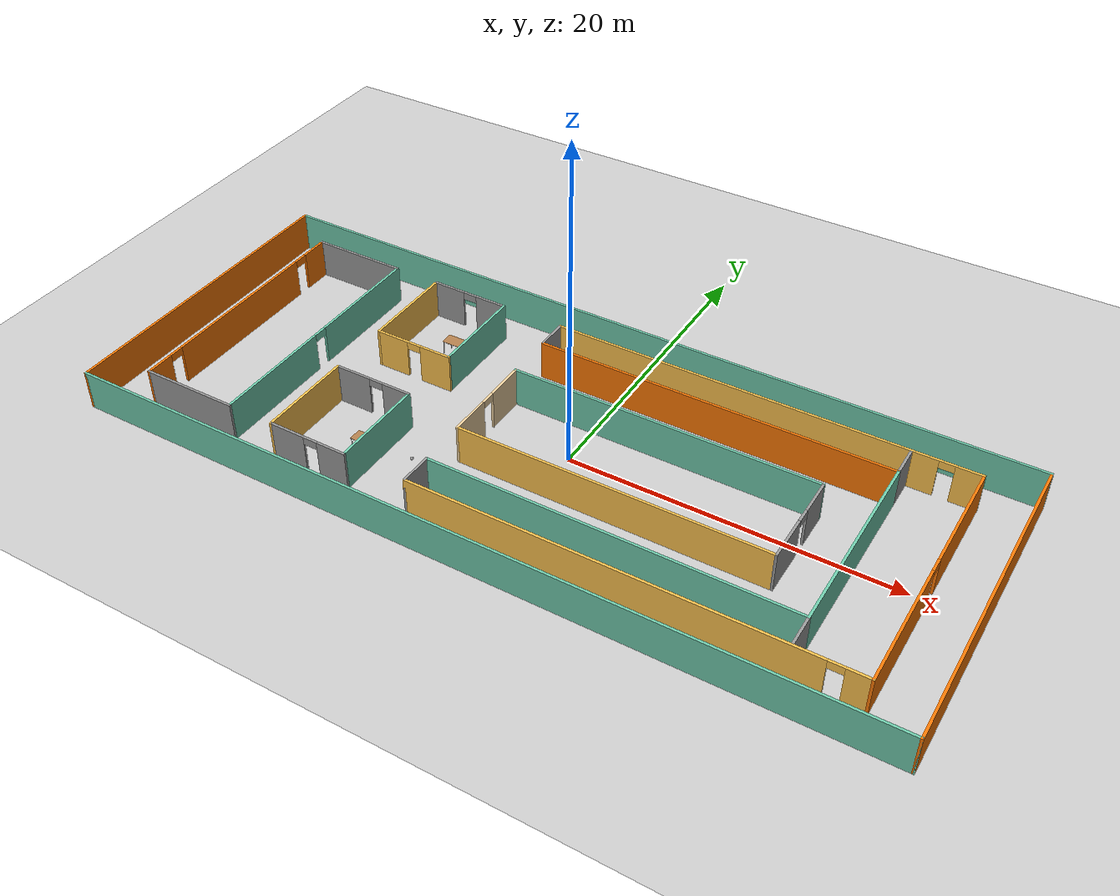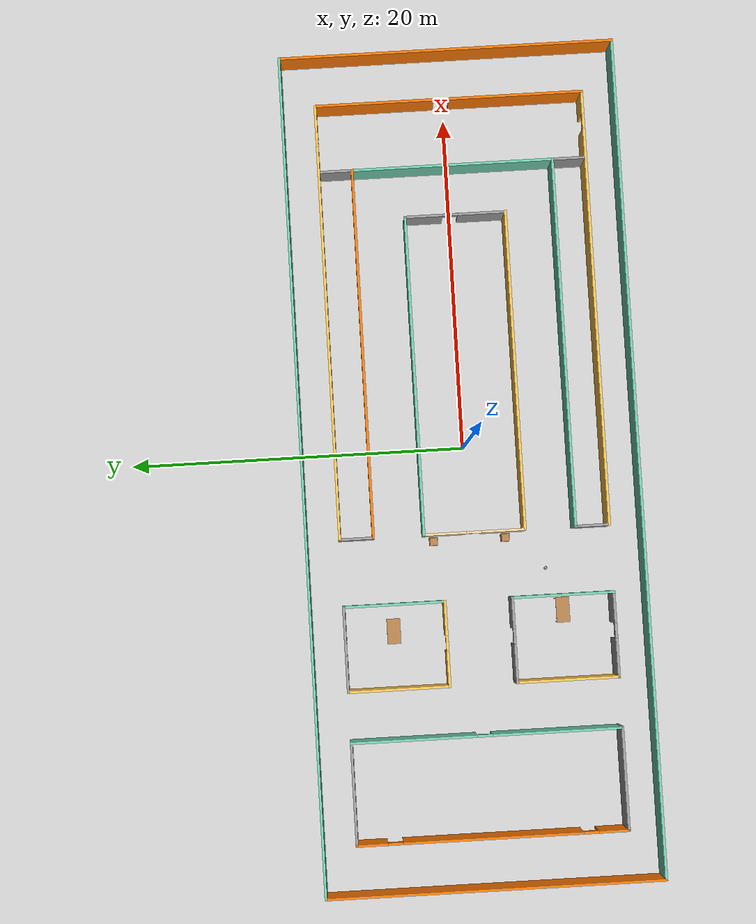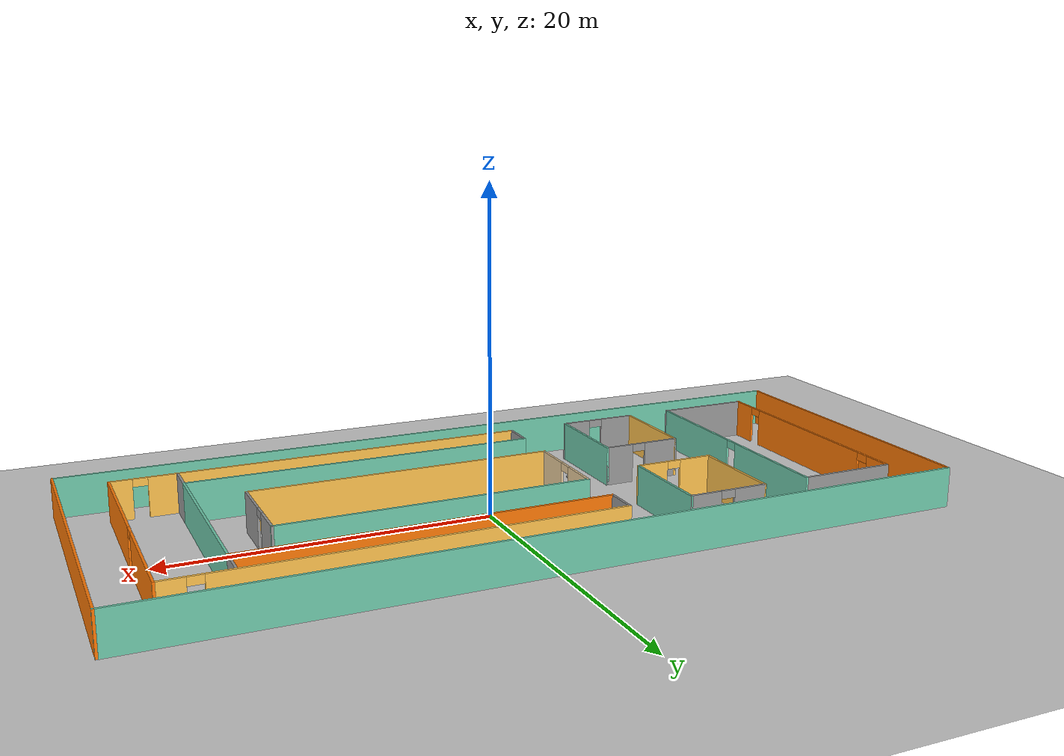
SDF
<sdf version="1.6">
 <world name="default">
  <light name="sun" type="directional">
   <pose>0 0 10 0 -0 0</pose>
   <diffuse>0.8 0.8 0.8 1</diffuse>
   <specular>0.2 0.2 0.2 1</specular>
   <attenuation>
    <range>1000</range>
    <constant>0.9</constant>
    <linear>0.01</linear>
    <quadratic>0.001</quadratic>
   </attenuation>
   <direction>-0.5 0.1 -0.9</direction>
  </light>
  <model name="ground_plane">
   <static>1</static>
   <link name="link">
    <collision name="collision">
     <geometry><plane><normal>0 0 1</normal><size>100 100</size></plane></geometry>
     <surface>
      <contact><collide_bitmask>65535</collide_bitmask></contact>
      <friction><ode><mu>100</mu><mu2>50</mu2></ode></friction>
     </surface>
    </collision>
    <visual name="visual">
     <cast_shadows>0</cast_shadows>
     <geometry><plane><normal>0 0 1</normal><size>100 100</size></plane></geometry>
     <material>
      <script><uri>file://media/materials/scripts/gazebo.material</uri><name>Gazebo/Grey</name></script>
     </material>
    </visual>
   </link>
  </model>
  <gravity>0 0 -9.8</gravity>
  <magnetic_field>6e-06 2.3e-05 -4.2e-05</magnetic_field>
  <atmosphere type="adiabatic"/>
  <physics name="default_physics" default="0" type="ode">
   <max_step_size>0.001</max_step_size>
   <real_time_factor>1</real_time_factor>
   <real_time_update_rate>1000</real_time_update_rate>
  </physics>
  <scene><ambient>0.4 0.4 0.4 1</ambient><background>0.7 0.7 0.7 1</background><shadows>1</shadows></scene>
  <spherical_coordinates>
   <surface_model>EARTH_WGS84</surface_model>
   <latitude_deg>0</latitude_deg>
   <longitude_deg>0</longitude_deg>
   <elevation>0</elevation>
   <heading_deg>0</heading_deg>
  </spherical_coordinates>
  <model name="buildingbig">
   <pose>-1.15163 -0.267473 0 0 -0 0</pose>
   <link name="Wall_0">
    <collision name="Wall_0_Collision">
     <geometry><box><size>20.15 0.15 2.5</size></box></geometry>
     <pose>0 0 1.25 0 -0 0</pose>
    </collision>
    <visual name="Wall_0_Visual">
     <pose>0 0 1.25 0 -0 0</pose>
     <geometry><box><size>20.15 0.15 2.5</size></box></geometry>
     <material>
      <script><uri>file://media/materials/scripts/gazebo.material</uri><name>Gazebo/Grey</name></script>
      <ambient>0.996078 0.47451 0.0196078 1</ambient>
     </material>
     <meta><layer>0</layer></meta>
    </visual>
    <pose>-25 0 0 0 0 -1.5708</pose>
   </link>
   <link name="Wall_13">
    <collision name="Wall_13_Collision">
     <geometry><box><size>50.15 0.15 2.5</size></box></geometry>
     <pose>0 0 1.25 0 -0 0</pose>
    </collision>
    <visual name="Wall_13_Visual">
     <pose>0 0 1.25 0 -0 0</pose>
     <geometry><box><size>50.15 0.15 2.5</size></box></geometry>
     <material>
      <script><uri>file://media/materials/scripts/gazebo.material</uri><name>Gazebo/Grey</name></script>
      <ambient>0.435294 0.796078 0.67451 1</ambient>
     </material>
     <meta><layer>0</layer></meta>
    </visual>
    <pose>0 -10 0 0 -0 0</pose>
   </link>
   <link name="Wall_17">
    <pose>-22 0 0 0 0 -1.5708</pose>
    <visual name="Wall_17_Visual_0">
     <pose>-7.12766 0 1.25 0 -0 0</pose>
     <geometry><box><size>1.89468 0.15 2.5</size></box></geometry>
     <material>
      <script><uri>file://media/materials/scripts/gazebo.material</uri><name>Gazebo/Grey</name></script>
      <ambient>0.996078 0.47451 0.0196078 1</ambient>
     </material>
     <meta><layer>0</layer></meta>
    </visual>
    <collision name="Wall_17_Collision_0">
     <geometry><box><size>1.89468 0.15 2.5</size></box></geometry>
     <pose>-7.12766 0 1.25 0 -0 0</pose>
    </collision>
    <visual name="Wall_17_Visual_1">
     <pose>0.030492 0 1.25 0 -0 0</pose>
     <geometry><box><size>10.6216 0.15 2.5</size></box></geometry>
     <material>
      <script><uri>file://media/materials/scripts/gazebo.material</uri><name>Gazebo/Grey</name></script>
      <ambient>0.996078 0.47451 0.0196078 1</ambient>
     </material>
     <meta><layer>0</layer></meta>
    </visual>
    <collision name="Wall_17_Collision_1">
     <geometry><box><size>10.6216 0.15 2.5</size></box></geometry>
     <pose>0.030492 0 1.25 0 -0 0</pose>
    </collision>
    <visual name="Wall_17_Visual_2">
     <pose>7.15815 0 1.25 0 -0 0</pose>
     <geometry><box><size>1.8337 0.15 2.5</size></box></geometry>
     <material>
      <script><uri>file://media/materials/scripts/gazebo.material</uri><name>Gazebo/Grey</name></script>
      <ambient>0.996078 0.47451 0.0196078 1</ambient>
     </material>
     <meta><layer>0</layer></meta>
    </visual>
    <collision name="Wall_17_Collision_2">
     <geometry><box><size>1.8337 0.15 2.5</size></box></geometry>
     <pose>7.15815 0 1.25 0 -0 0</pose>
    </collision>
    <visual name="Wall_17_Visual_3">
     <pose>-5.73032 0 2.25 0 -0 0</pose>
     <geometry><box><size>0.9 0.15 0.5</size></box></geometry>
     <material>
      <script><uri>file://media/materials/scripts/gazebo.material</uri><name>Gazebo/Grey</name></script>
      <ambient>0.996078 0.47451 0.0196078 1</ambient>
     </material>
     <meta><layer>0</layer></meta>
    </visual>
    <collision name="Wall_17_Collision_3">
     <geometry><box><size>0.9 0.15 0.5</size></box></geometry>
     <pose>-5.73032 0 2.25 0 -0 0</pose>
    </collision>
    <visual name="Wall_17_Visual_4">
     <pose>5.7913 0 2.25 0 -0 0</pose>
     <geometry><box><size>0.9 0.15 0.5</size></box></geometry>
     <material>
      <script><uri>file://media/materials/scripts/gazebo.material</uri><name>Gazebo/Grey</name></script>
      <ambient>0.996078 0.47451 0.0196078 1</ambient>
     </material>
     <meta><layer>0</layer></meta>
    </visual>
    <collision name="Wall_17_Collision_4">
     <geometry><box><size>0.9 0.15 0.5</size></box></geometry>
     <pose>5.7913 0 2.25 0 -0 0</pose>
    </collision>
   </link>
   <link name="Wall_19">
    <collision name="Wall_19_Collision">
     <geometry><box><size>6.15 0.15 2.5</size></box></geometry>
     <pose>0 0 1.25 0 -0 0</pose>
    </collision>
    <visual name="Wall_19_Visual">
     <pose>0 0 1.25 0 -0 0</pose>
     <geometry><box><size>6.15 0.15 2.5</size></box></geometry>
     <material>
      <script><uri>file://media/materials/scripts/gazebo.material</uri><name>Gazebo/Grey</name></script>
      <ambient>1 1 1 1</ambient>
     </material>
     <meta><layer>0</layer></meta>
    </visual>
    <pose>-19 8 0 0 -0 0</pose>
   </link>
   <link name="Wall_2">
    <collision name="Wall_2_Collision">
     <geometry><box><size>20.15 0.15 2.5</size></box></geometry>
     <pose>0 0 1.25 0 -0 0</pose>
    </collision>
    <visual name="Wall_2_Visual">
     <pose>0 0 1.25 0 -0 0</pose>
     <geometry><box><size>20.15 0.15 2.5</size></box></geometry>
     <material>
      <script><uri>file://media/materials/scripts/gazebo.material</uri><name>Gazebo/Grey</name></script>
      <ambient>0.996078 0.47451 0.0196078 1</ambient>
     </material>
     <meta><layer>0</layer></meta>
    </visual>
    <pose>25 0 0 0 -0 1.5708</pose>
   </link>
   <link name="Wall_20">
    <pose>-16 0 0 0 0 -1.5708</pose>
    <visual name="Wall_20_Visual_0">
     <pose>-4.31867 0 1.25 0 -0 0</pose>
     <geometry><box><size>7.51266 0.15 2.5</size></box></geometry>
     <material>
      <script><uri>file://media/materials/scripts/gazebo.material</uri><name>Gazebo/Grey</name></script>
      <ambient>0.435294 0.796078 0.67451 1</ambient>
     </material>
     <meta><layer>0</layer></meta>
    </visual>
    <collision name="Wall_20_Collision_0">
     <geometry><box><size>7.51266 0.15 2.5</size></box></geometry>
     <pose>-4.31867 0 1.25 0 -0 0</pose>
    </collision>
    <visual name="Wall_20_Visual_1">
     <pose>4.20633 0 1.25 0 -0 0</pose>
     <geometry><box><size>7.73734 0.15 2.5</size></box></geometry>
     <material>
      <script><uri>file://media/materials/scripts/gazebo.material</uri><name>Gazebo/Grey</name></script>
      <ambient>0.435294 0.796078 0.67451 1</ambient>
     </material>
     <meta><layer>0</layer></meta>
    </visual>
    <collision name="Wall_20_Collision_1">
     <geometry><box><size>7.73734 0.15 2.5</size></box></geometry>
     <pose>4.20633 0 1.25 0 -0 0</pose>
    </collision>
    <visual name="Wall_20_Visual_2">
     <pose>-0.112338 0 2.25 0 -0 0</pose>
     <geometry><box><size>0.9 0.15 0.5</size></box></geometry>
     <material>
      <script><uri>file://media/materials/scripts/gazebo.material</uri><name>Gazebo/Grey</name></script>
      <ambient>0.435294 0.796078 0.67451 1</ambient>
     </material>
     <meta><layer>0</layer></meta>
    </visual>
    <collision name="Wall_20_Collision_2">
     <geometry><box><size>0.9 0.15 0.5</size></box></geometry>
     <pose>-0.112338 0 2.25 0 -0 0</pose>
    </collision>
   </link>
   <link name="Wall_21">
    <collision name="Wall_21_Collision">
     <geometry><box><size>6.15 0.15 2.5</size></box></geometry>
     <pose>0 0 1.25 0 -0 0</pose>
    </collision>
    <visual name="Wall_21_Visual">
     <pose>0 0 1.25 0 -0 0</pose>
     <geometry><box><size>6.15 0.15 2.5</size></box></geometry>
     <material>
      <script><uri>file://media/materials/scripts/gazebo.material</uri><name>Gazebo/Grey</name></script>
      <ambient>1 1 1 1</ambient>
     </material>
     <meta><layer>0</layer></meta>
    </visual>
    <pose>-19 -8 0 0 -0 3.14159</pose>
   </link>
   <link name="Wall_23">
    <collision name="Wall_23_Collision">
     <geometry><box><size>6.15 0.15 2.5</size></box></geometry>
     <pose>0 0 1.25 0 -0 0</pose>
    </collision>
    <visual name="Wall_23_Visual">
     <pose>0 0 1.25 0 -0 0</pose>
     <geometry><box><size>6.15 0.15 2.5</size></box></geometry>
     <material>
      <script><uri>file://media/materials/scripts/gazebo.material</uri><name>Gazebo/Grey</name></script>
      <ambient>1 0.764706 0.305882 1</ambient>
     </material>
     <meta><layer>0</layer></meta>
    </visual>
    <pose>-13 5 0 0 0 -1.5708</pose>
   </link>
   <link name="Wall_25">
    <pose>-10.5 8 0 0 -0 0</pose>
    <visual name="Wall_25_Visual_0">
     <pose>-1.4906 0 1.25 0 -0 0</pose>
     <geometry><box><size>2.16879 0.15 2.5</size></box></geometry>
     <material>
      <script><uri>file://media/materials/scripts/gazebo.material</uri><name>Gazebo/Grey</name></script>
      <ambient>1 1 1 1</ambient>
     </material>
     <meta><layer>0</layer></meta>
    </visual>
    <collision name="Wall_25_Collision_0">
     <geometry><box><size>2.16879 0.15 2.5</size></box></geometry>
     <pose>-1.4906 0 1.25 0 -0 0</pose>
    </collision>
    <visual name="Wall_25_Visual_1">
     <pose>1.5344 0 1.25 0 -0 0</pose>
     <geometry><box><size>2.08121 0.15 2.5</size></box></geometry>
     <material>
      <script><uri>file://media/materials/scripts/gazebo.material</uri><name>Gazebo/Grey</name></script>
      <ambient>1 1 1 1</ambient>
     </material>
     <meta><layer>0</layer></meta>
    </visual>
    <collision name="Wall_25_Collision_1">
     <geometry><box><size>2.08121 0.15 2.5</size></box></geometry>
     <pose>1.5344 0 1.25 0 -0 0</pose>
    </collision>
    <visual name="Wall_25_Visual_2">
     <pose>0.043795 0 2.25 0 -0 0</pose>
     <geometry><box><size>0.9 0.15 0.5</size></box></geometry>
     <material>
      <script><uri>file://media/materials/scripts/gazebo.material</uri><name>Gazebo/Grey</name></script>
      <ambient>1 1 1 1</ambient>
     </material>
     <meta><layer>0</layer></meta>
    </visual>
    <collision name="Wall_25_Collision_2">
     <geometry><box><size>0.9 0.15 0.5</size></box></geometry>
     <pose>0.043795 0 2.25 0 -0 0</pose>
    </collision>
   </link>
   <link name="Wall_26">
    <collision name="Wall_26_Collision">
     <geometry><box><size>6.15 0.15 2.5</size></box></geometry>
     <pose>0 0 1.25 0 -0 0</pose>
    </collision>
    <visual name="Wall_26_Visual">
     <pose>0 0 1.25 0 -0 0</pose>
     <geometry><box><size>6.15 0.15 2.5</size></box></geometry>
     <material>
      <script><uri>file://media/materials/scripts/gazebo.material</uri><name>Gazebo/Grey</name></script>
      <ambient>0.435294 0.796078 0.67451 1</ambient>
     </material>
     <meta><layer>0</layer></meta>
    </visual>
    <pose>-8 5 0 0 0 -1.5708</pose>
   </link>
   <link name="Wall_27">
    <pose>-10.5 2 0 0 -0 3.14159</pose>
    <visual name="Wall_27_Visual_0">
     <pose>-1.5344 0 1.25 0 -0 0</pose>
     <geometry><box><size>2.08121 0.15 2.5</size></box></geometry>
     <material>
      <script><uri>file://media/materials/scripts/gazebo.material</uri><name>Gazebo/Grey</name></script>
      <ambient>1 0.764706 0.305882 1</ambient>
     </material>
     <meta><layer>0</layer></meta>
    </visual>
    <collision name="Wall_27_Collision_0">
     <geometry><box><size>2.08121 0.15 2.5</size></box></geometry>
     <pose>-1.5344 0 1.25 0 -0 0</pose>
    </collision>
    <visual name="Wall_27_Visual_1">
     <pose>1.4906 0 1.25 0 -0 0</pose>
     <geometry><box><size>2.16879 0.15 2.5</size></box></geometry>
     <material>
      <script><uri>file://media/materials/scripts/gazebo.material</uri><name>Gazebo/Grey</name></script>
      <ambient>1 0.764706 0.305882 1</ambient>
     </material>
     <meta><layer>0</layer></meta>
    </visual>
    <collision name="Wall_27_Collision_1">
     <geometry><box><size>2.16879 0.15 2.5</size></box></geometry>
     <pose>1.4906 0 1.25 0 -0 0</pose>
    </collision>
    <visual name="Wall_27_Visual_2">
     <pose>-0.043795 0 2.25 0 -0 0</pose>
     <geometry><box><size>0.9 0.15 0.5</size></box></geometry>
     <material>
      <script><uri>file://media/materials/scripts/gazebo.material</uri><name>Gazebo/Grey</name></script>
      <ambient>1 0.764706 0.305882 1</ambient>
     </material>
     <meta><layer>0</layer></meta>
    </visual>
    <collision name="Wall_27_Collision_2">
     <geometry><box><size>0.9 0.15 0.5</size></box></geometry>
     <pose>-0.043795 0 2.25 0 -0 0</pose>
    </collision>
   </link>
   <link name="Wall_29">
    <collision name="Wall_29_Collision">
     <geometry><box><size>6.15 0.15 2.5</size></box></geometry>
     <pose>0 0 1.25 0 -0 0</pose>
    </collision>
    <visual name="Wall_29_Visual">
     <pose>0 0 1.25 0 -0 0</pose>
     <geometry><box><size>6.15 0.15 2.5</size></box></geometry>
     <material>
      <script><uri>file://media/materials/scripts/gazebo.material</uri><name>Gazebo/Grey</name></script>
      <ambient>1 0.764706 0.305882 1</ambient>
     </material>
     <meta><layer>0</layer></meta>
    </visual>
    <pose>-13 -5 0 0 -0 1.5708</pose>
   </link>
   <link name="Wall_3">
    <collision name="Wall_3_Collision">
     <geometry><box><size>50.15 0.15 2.5</size></box></geometry>
     <pose>0 0 1.25 0 -0 0</pose>
    </collision>
    <visual name="Wall_3_Visual">
     <pose>0 0 1.25 0 -0 0</pose>
     <geometry><box><size>50.15 0.15 2.5</size></box></geometry>
     <material>
      <script><uri>file://media/materials/scripts/gazebo.material</uri><name>Gazebo/Grey</name></script>
      <ambient>0.435294 0.796078 0.67451 1</ambient>
     </material>
     <meta><layer>0</layer></meta>
    </visual>
    <pose>0 10 0 0 -0 3.14159</pose>
   </link>
   <link name="Wall_30">
    <pose>-10.5 -2 0 0 -0 0</pose>
    <visual name="Wall_30_Visual_0">
     <pose>-1.39538 0 1.25 0 -0 0</pose>
     <geometry><box><size>2.35923 0.15 2.5</size></box></geometry>
     <material>
      <script><uri>file://media/materials/scripts/gazebo.material</uri><name>Gazebo/Grey</name></script>
      <ambient>1 1 1 1</ambient>
     </material>
     <meta><layer>0</layer></meta>
    </visual>
    <collision name="Wall_30_Collision_0">
     <geometry><box><size>2.35923 0.15 2.5</size></box></geometry>
     <pose>-1.39538 0 1.25 0 -0 0</pose>
    </collision>
    <visual name="Wall_30_Visual_1">
     <pose>1.62962 0 1.25 0 -0 0</pose>
     <geometry><box><size>1.89077 0.15 2.5</size></box></geometry>
     <material>
      <script><uri>file://media/materials/scripts/gazebo.material</uri><name>Gazebo/Grey</name></script>
      <ambient>1 1 1 1</ambient>
     </material>
     <meta><layer>0</layer></meta>
    </visual>
    <collision name="Wall_30_Collision_1">
     <geometry><box><size>1.89077 0.15 2.5</size></box></geometry>
     <pose>1.62962 0 1.25 0 -0 0</pose>
    </collision>
    <visual name="Wall_30_Visual_2">
     <pose>0.234235 0 2.25 0 -0 0</pose>
     <geometry><box><size>0.9 0.15 0.5</size></box></geometry>
     <material>
      <script><uri>file://media/materials/scripts/gazebo.material</uri><name>Gazebo/Grey</name></script>
      <ambient>1 1 1 1</ambient>
     </material>
     <meta><layer>0</layer></meta>
    </visual>
    <collision name="Wall_30_Collision_2">
     <geometry><box><size>0.9 0.15 0.5</size></box></geometry>
     <pose>0.234235 0 2.25 0 -0 0</pose>
    </collision>
   </link>
   <link name="Wall_31">
    <collision name="Wall_31_Collision">
     <geometry><box><size>6.15 0.15 2.5</size></box></geometry>
     <pose>0 0 1.25 0 -0 0</pose>
    </collision>
    <visual name="Wall_31_Visual">
     <pose>0 0 1.25 0 -0 0</pose>
     <geometry><box><size>6.15 0.15 2.5</size></box></geometry>
     <material>
      <script><uri>file://media/materials/scripts/gazebo.material</uri><name>Gazebo/Grey</name></script>
      <ambient>0.435294 0.796078 0.67451 1</ambient>
     </material>
     <meta><layer>0</layer></meta>
    </visual>
    <pose>-8 -5 0 0 0 -1.5708</pose>
   </link>
   <link name="Wall_32">
    <pose>-10.5 -8 0 0 -0 3.14159</pose>
    <visual name="Wall_32_Visual_0">
     <pose>-1.62971 0 1.25 0 -0 0</pose>
     <geometry><box><size>1.89095 0.15 2.5</size></box></geometry>
     <material>
      <script><uri>file://media/materials/scripts/gazebo.material</uri><name>Gazebo/Grey</name></script>
      <ambient>1 1 1 1</ambient>
     </material>
     <meta><layer>0</layer></meta>
    </visual>
    <collision name="Wall_32_Collision_0">
     <geometry><box><size>1.89095 0.15 2.5</size></box></geometry>
     <pose>-1.62971 0 1.25 0 -0 0</pose>
    </collision>
    <visual name="Wall_32_Visual_1">
     <pose>1.39548 0 1.25 0 -0 0</pose>
     <geometry><box><size>2.35942 0.15 2.5</size></box></geometry>
     <material>
      <script><uri>file://media/materials/scripts/gazebo.material</uri><name>Gazebo/Grey</name></script>
      <ambient>1 1 1 1</ambient>
     </material>
     <meta><layer>0</layer></meta>
    </visual>
    <collision name="Wall_32_Collision_1">
     <geometry><box><size>2.35942 0.15 2.5</size></box></geometry>
     <pose>1.39548 0 1.25 0 -0 0</pose>
    </collision>
    <visual name="Wall_32_Visual_2">
     <pose>-0.234235 0 2.25 0 -0 0</pose>
     <geometry><box><size>0.9 0.15 0.5</size></box></geometry>
     <material>
      <script><uri>file://media/materials/scripts/gazebo.material</uri><name>Gazebo/Grey</name></script>
      <ambient>1 1 1 1</ambient>
     </material>
     <meta><layer>0</layer></meta>
    </visual>
    <collision name="Wall_32_Collision_2">
     <geometry><box><size>0.9 0.15 0.5</size></box></geometry>
     <pose>-0.234235 0 2.25 0 -0 0</pose>
    </collision>
   </link>
   <link name="Wall_34">
    <pose>-4 0 0 0 0 -1.5708</pose>
    <visual name="Wall_34_Visual_0">
     <pose>-1.77106 0 1.25 0 -0 0</pose>
     <geometry><box><size>2.60788 0.15 2.5</size></box></geometry>
     <material>
      <script><uri>file://media/materials/scripts/gazebo.material</uri><name>Gazebo/Grey</name></script>
      <ambient>0.921569 0.807843 0.615686 1</ambient>
     </material>
     <meta><layer>0</layer></meta>
    </visual>
    <collision name="Wall_34_Collision_0">
     <geometry><box><size>2.60788 0.15 2.5</size></box></geometry>
     <pose>-1.77106 0 1.25 0 -0 0</pose>
    </collision>
    <visual name="Wall_34_Visual_1">
     <pose>1.75394 0 1.25 0 -0 0</pose>
     <geometry><box><size>2.64212 0.15 2.5</size></box></geometry>
     <material>
      <script><uri>file://media/materials/scripts/gazebo.material</uri><name>Gazebo/Grey</name></script>
      <ambient>0.921569 0.807843 0.615686 1</ambient>
     </material>
     <meta><layer>0</layer></meta>
    </visual>
    <collision name="Wall_34_Collision_1">
     <geometry><box><size>2.64212 0.15 2.5</size></box></geometry>
     <pose>1.75394 0 1.25 0 -0 0</pose>
    </collision>
    <visual name="Wall_34_Visual_2">
     <pose>-0.017118 0 2.25 0 -0 0</pose>
     <geometry><box><size>0.9 0.15 0.5</size></box></geometry>
     <material>
      <script><uri>file://media/materials/scripts/gazebo.material</uri><name>Gazebo/Grey</name></script>
      <ambient>0.921569 0.807843 0.615686 1</ambient>
     </material>
     <meta><layer>0</layer></meta>
    </visual>
    <collision name="Wall_34_Collision_2">
     <geometry><box><size>0.9 0.15 0.5</size></box></geometry>
     <pose>-0.017118 0 2.25 0 -0 0</pose>
    </collision>
   </link>
   <link name="Wall_35">
    <collision name="Wall_35_Collision">
     <geometry><box><size>19.15 0.15 2.5</size></box></geometry>
     <pose>0 0 1.25 0 -0 0</pose>
    </collision>
    <visual name="Wall_35_Visual">
     <pose>0 0 1.25 0 -0 0</pose>
     <geometry><box><size>19.15 0.15 2.5</size></box></geometry>
     <material>
      <script><uri>file://media/materials/scripts/gazebo.material</uri><name>Gazebo/Grey</name></script>
      <ambient>1 0.764706 0.305882 1</ambient>
     </material>
     <meta><layer>0</layer></meta>
    </visual>
    <pose>5.5 -3 0 0 -0 0</pose>
   </link>
   <link name="Wall_36">
    <pose>15 0 0 0 -0 1.5708</pose>
    <visual name="Wall_36_Visual_0">
     <pose>-1.61111 0 1.25 0 -0 0</pose>
     <geometry><box><size>2.92778 0.15 2.5</size></box></geometry>
     <material>
      <script><uri>file://media/materials/scripts/gazebo.material</uri><name>Gazebo/Grey</name></script>
      <ambient>1 1 1 1</ambient>
     </material>
     <meta><layer>0</layer></meta>
    </visual>
    <collision name="Wall_36_Collision_0">
     <geometry><box><size>2.92778 0.15 2.5</size></box></geometry>
     <pose>-1.61111 0 1.25 0 -0 0</pose>
    </collision>
    <visual name="Wall_36_Visual_1">
     <pose>1.91389 0 1.25 0 -0 0</pose>
     <geometry><box><size>2.32222 0.15 2.5</size></box></geometry>
     <material>
      <script><uri>file://media/materials/scripts/gazebo.material</uri><name>Gazebo/Grey</name></script>
      <ambient>1 1 1 1</ambient>
     </material>
     <meta><layer>0</layer></meta>
    </visual>
    <collision name="Wall_36_Collision_1">
     <geometry><box><size>2.32222 0.15 2.5</size></box></geometry>
     <pose>1.91389 0 1.25 0 -0 0</pose>
    </collision>
    <visual name="Wall_36_Visual_2">
     <pose>0.302778 0 2.25 0 -0 0</pose>
     <geometry><box><size>0.9 0.15 0.5</size></box></geometry>
     <material>
      <script><uri>file://media/materials/scripts/gazebo.material</uri><name>Gazebo/Grey</name></script>
      <ambient>1 1 1 1</ambient>
     </material>
     <meta><layer>0</layer></meta>
    </visual>
    <collision name="Wall_36_Collision_2">
     <geometry><box><size>0.9 0.15 0.5</size></box></geometry>
     <pose>0.302778 0 2.25 0 -0 0</pose>
    </collision>
   </link>
   <link name="Wall_37">
    <collision name="Wall_37_Collision">
     <geometry><box><size>19.15 0.15 2.5</size></box></geometry>
     <pose>0 0 1.25 0 -0 0</pose>
    </collision>
    <visual name="Wall_37_Visual">
     <pose>0 0 1.25 0 -0 0</pose>
     <geometry><box><size>19.15 0.15 2.5</size></box></geometry>
     <material>
      <script><uri>file://media/materials/scripts/gazebo.material</uri><name>Gazebo/Grey</name></script>
      <ambient>0.435294 0.796078 0.67451 1</ambient>
     </material>
     <meta><layer>0</layer></meta>
    </visual>
    <pose>5.5 3 0 0 -0 3.14159</pose>
   </link>
   <link name="Wall_39">
    <collision name="Wall_39_Collision">
     <geometry><box><size>2.15 0.15 2.5</size></box></geometry>
     <pose>0 0 1.25 0 -0 0</pose>
    </collision>
    <visual name="Wall_39_Visual">
     <pose>0 0 1.25 0 -0 0</pose>
     <geometry><box><size>2.15 0.15 2.5</size></box></geometry>
     <material>
      <script><uri>file://media/materials/scripts/gazebo.material</uri><name>Gazebo/Grey</name></script>
      <ambient>1 1 1 1</ambient>
     </material>
     <meta><layer>0</layer></meta>
    </visual>
    <pose>-4 7 0 0 0 -1.5708</pose>
   </link>
   <link name="Wall_40">
    <collision name="Wall_40_Collision">
     <geometry><box><size>22.15 0.15 2.5</size></box></geometry>
     <pose>0 0 1.25 0 -0 0</pose>
    </collision>
    <visual name="Wall_40_Visual">
     <pose>0 0 1.25 0 -0 0</pose>
     <geometry><box><size>22.15 0.15 2.5</size></box></geometry>
     <material>
      <script><uri>file://media/materials/scripts/gazebo.material</uri><name>Gazebo/Grey</name></script>
      <ambient>0.996078 0.47451 0.0196078 1</ambient>
     </material>
     <meta><layer>0</layer></meta>
    </visual>
    <pose>7 6 0 0 -0 0</pose>
   </link>
   <link name="Wall_41">
    <collision name="Wall_41_Collision">
     <geometry><box><size>12.15 0.15 2.5</size></box></geometry>
     <pose>0 0 1.25 0 -0 0</pose>
    </collision>
    <visual name="Wall_41_Visual">
     <pose>0 0 1.25 0 -0 0</pose>
     <geometry><box><size>12.15 0.15 2.5</size></box></geometry>
     <material>
      <script><uri>file://media/materials/scripts/gazebo.material</uri><name>Gazebo/Grey</name></script>
      <ambient>0.435294 0.796078 0.67451 1</ambient>
     </material>
     <meta><layer>0</layer></meta>
    </visual>
    <pose>18 0 0 0 0 -1.5708</pose>
   </link>
   <link name="Wall_42">
    <collision name="Wall_42_Collision">
     <geometry><box><size>22.15 0.15 2.5</size></box></geometry>
     <pose>0 0 1.25 0 -0 0</pose>
    </collision>
    <visual name="Wall_42_Visual">
     <pose>0 0 1.25 0 -0 0</pose>
     <geometry><box><size>22.15 0.15 2.5</size></box></geometry>
     <material>
      <script><uri>file://media/materials/scripts/gazebo.material</uri><name>Gazebo/Grey</name></script>
      <ambient>0.435294 0.796078 0.67451 1</ambient>
     </material>
     <meta><layer>0</layer></meta>
    </visual>
    <pose>7 -6 0 0 -0 3.14159</pose>
   </link>
   <link name="Wall_43">
    <collision name="Wall_43_Collision">
     <geometry><box><size>2.15 0.15 2.5</size></box></geometry>
     <pose>0 0 1.25 0 -0 0</pose>
    </collision>
    <visual name="Wall_43_Visual">
     <pose>0 0 1.25 0 -0 0</pose>
     <geometry><box><size>2.15 0.15 2.5</size></box></geometry>
     <material>
      <script><uri>file://media/materials/scripts/gazebo.material</uri><name>Gazebo/Grey</name></script>
      <ambient>1 1 1 1</ambient>
     </material>
     <meta><layer>0</layer></meta>
    </visual>
    <pose>-4 -7 0 0 0 -1.5708</pose>
   </link>
   <link name="Wall_44">
    <pose>9 -8 0 0 -0 0</pose>
    <visual name="Wall_44_Visual_0">
     <pose>-1.15481 0 1.25 0 -0 0</pose>
     <geometry><box><size>23.8404 0.15 2.5</size></box></geometry>
     <material>
      <script><uri>file://media/materials/scripts/gazebo.material</uri><name>Gazebo/Grey</name></script>
      <ambient>1 0.764706 0.305882 1</ambient>
     </material>
     <meta><layer>0</layer></meta>
    </visual>
    <collision name="Wall_44_Collision_0">
     <geometry><box><size>23.8404 0.15 2.5</size></box></geometry>
     <pose>-1.15481 0 1.25 0 -0 0</pose>
    </collision>
    <visual name="Wall_44_Visual_1">
     <pose>12.3702 0 1.25 0 -0 0</pose>
     <geometry><box><size>1.40963 0.15 2.5</size></box></geometry>
     <material>
      <script><uri>file://media/materials/scripts/gazebo.material</uri><name>Gazebo/Grey</name></script>
      <ambient>1 0.764706 0.305882 1</ambient>
     </material>
     <meta><layer>0</layer></meta>
    </visual>
    <collision name="Wall_44_Collision_1">
     <geometry><box><size>1.40963 0.15 2.5</size></box></geometry>
     <pose>12.3702 0 1.25 0 -0 0</pose>
    </collision>
    <visual name="Wall_44_Visual_2">
     <pose>11.2154 0 2.25 0 -0 0</pose>
     <geometry><box><size>0.9 0.15 0.5</size></box></geometry>
     <material>
      <script><uri>file://media/materials/scripts/gazebo.material</uri><name>Gazebo/Grey</name></script>
      <ambient>1 0.764706 0.305882 1</ambient>
     </material>
     <meta><layer>0</layer></meta>
    </visual>
    <collision name="Wall_44_Collision_2">
     <geometry><box><size>0.9 0.15 0.5</size></box></geometry>
     <pose>11.2154 0 2.25 0 -0 0</pose>
    </collision>
   </link>
   <link name="Wall_45">
    <pose>22 0 0 0 -0 1.5708</pose>
    <visual name="Wall_45_Visual_0">
     <pose>-4.05267 0 1.25 0 -0 0</pose>
     <geometry><box><size>8.04467 0.15 2.5</size></box></geometry>
     <material>
      <script><uri>file://media/materials/scripts/gazebo.material</uri><name>Gazebo/Grey</name></script>
      <ambient>0.996078 0.47451 0.0196078 1</ambient>
     </material>
     <meta><layer>0</layer></meta>
    </visual>
    <collision name="Wall_45_Collision_0">
     <geometry><box><size>8.04467 0.15 2.5</size></box></geometry>
     <pose>-4.05267 0 1.25 0 -0 0</pose>
    </collision>
    <visual name="Wall_45_Visual_1">
     <pose>4.47233 0 1.25 0 -0 0</pose>
     <geometry><box><size>7.20533 0.15 2.5</size></box></geometry>
     <material>
      <script><uri>file://media/materials/scripts/gazebo.material</uri><name>Gazebo/Grey</name></script>
      <ambient>0.996078 0.47451 0.0196078 1</ambient>
     </material>
     <meta><layer>0</layer></meta>
    </visual>
    <collision name="Wall_45_Collision_1">
     <geometry><box><size>7.20533 0.15 2.5</size></box></geometry>
     <pose>4.47233 0 1.25 0 -0 0</pose>
    </collision>
    <visual name="Wall_45_Visual_2">
     <pose>0.419667 0 2.25 0 -0 0</pose>
     <geometry><box><size>0.9 0.15 0.5</size></box></geometry>
     <material>
      <script><uri>file://media/materials/scripts/gazebo.material</uri><name>Gazebo/Grey</name></script>
      <ambient>0.996078 0.47451 0.0196078 1</ambient>
     </material>
     <meta><layer>0</layer></meta>
    </visual>
    <collision name="Wall_45_Collision_2">
     <geometry><box><size>0.9 0.15 0.5</size></box></geometry>
     <pose>0.419667 0 2.25 0 -0 0</pose>
    </collision>
   </link>
   <link name="Wall_46">
    <pose>9 8 0 0 -0 3.14159</pose>
    <visual name="Wall_46_Visual_0">
     <pose>-12.2607 0 1.25 0 -0 0</pose>
     <geometry><box><size>1.62863 0.15 2.5</size></box></geometry>
     <material>
      <script><uri>file://media/materials/scripts/gazebo.material</uri><name>Gazebo/Grey</name></script>
      <ambient>1 0.764706 0.305882 1</ambient>
     </material>
     <meta><layer>0</layer></meta>
    </visual>
    <collision name="Wall_46_Collision_0">
     <geometry><box><size>1.62863 0.15 2.5</size></box></geometry>
     <pose>-12.2607 0 1.25 0 -0 0</pose>
    </collision>
    <visual name="Wall_46_Visual_1">
     <pose>1.26432 0 1.25 0 -0 0</pose>
     <geometry><box><size>23.6214 0.15 2.5</size></box></geometry>
     <material>
      <script><uri>file://media/materials/scripts/gazebo.material</uri><name>Gazebo/Grey</name></script>
      <ambient>1 0.764706 0.305882 1</ambient>
     </material>
     <meta><layer>0</layer></meta>
    </visual>
    <collision name="Wall_46_Collision_1">
     <geometry><box><size>23.6214 0.15 2.5</size></box></geometry>
     <pose>1.26432 0 1.25 0 -0 0</pose>
    </collision>
    <visual name="Wall_46_Visual_2">
     <pose>-10.9964 0 2.25 0 -0 0</pose>
     <geometry><box><size>0.9 0.15 0.5</size></box></geometry>
     <material>
      <script><uri>file://media/materials/scripts/gazebo.material</uri><name>Gazebo/Grey</name></script>
      <ambient>1 0.764706 0.305882 1</ambient>
     </material>
     <meta><layer>0</layer></meta>
    </visual>
    <collision name="Wall_46_Collision_2">
     <geometry><box><size>0.9 0.15 0.5</size></box></geometry>
     <pose>-10.9964 0 2.25 0 -0 0</pose>
    </collision>
   </link>
   <link name="Wall_48">
    <collision name="Wall_48_Collision">
     <geometry><box><size>2 0.15 2.5</size></box></geometry>
     <pose>0 0 1.25 0 -0 0</pose>
    </collision>
    <visual name="Wall_48_Visual">
     <pose>0 0 1.25 0 -0 0</pose>
     <geometry><box><size>2 0.15 2.5</size></box></geometry>
     <material>
      <script><uri>file://media/materials/scripts/gazebo.material</uri><name>Gazebo/Grey</name></script>
      <ambient>1 1 1 1</ambient>
     </material>
     <meta><layer>0</layer></meta>
    </visual>
    <pose>18 -6.925 0 0 0 -1.5708</pose>
   </link>
   <link name="Wall_50">
    <collision name="Wall_50_Collision">
     <geometry><box><size>2 0.15 2.5</size></box></geometry>
     <pose>0 0 1.25 0 -0 0</pose>
    </collision>
    <visual name="Wall_50_Visual">
     <pose>0 0 1.25 0 -0 0</pose>
     <geometry><box><size>2 0.15 2.5</size></box></geometry>
     <material>
      <script><uri>file://media/materials/scripts/gazebo.material</uri><name>Gazebo/Grey</name></script>
      <ambient>1 1 1 1</ambient>
     </material>
     <meta><layer>0</layer></meta>
    </visual>
    <pose>18 6.925 0 0 -0 1.5708</pose>
   </link>
   <static>1</static>
  </model>
  <model name="ball">
   <link name="link_0">
    <inertial>
     <mass>1</mass>
     <inertia><ixx>0.1</ixx><ixy>0</ixy><ixz>0</ixz><iyy>0.1</iyy><iyz>0</iyz><izz>0.1</izz></inertia>
    </inertial>
    <visual name="visual">
     <geometry><sphere><radius>0.1</radius></sphere></geometry>
     <material>
      <lighting>1</lighting>
      <script><uri>file://media/materials/scripts/gazebo.material</uri><name>Gazebo/Grey</name></script>
      <shader type="pixel"><normal_map>__default__</normal_map></shader>
      <ambient>1 1 1 1</ambient>
      <diffuse>1 1 1 1</diffuse>
      <specular>1 1 1 1</specular>
      <emissive>1 1 1 1</emissive>
     </material>
    </visual>
    <collision name="collision">
     <geometry><sphere><radius>0.1</radius></sphere></geometry>
     <surface>
      <friction>
       <ode><mu>1</mu><mu2>1</mu2><fdir1>0 0 0</fdir1><slip1>0</slip1><slip2>0</slip2></ode>
       <torsional>
        <coefficient>1</coefficient>
        <patch_radius>0</patch_radius>
        <surface_radius>0</surface_radius>
        <use_patch_radius>1</use_patch_radius>
        <ode><slip>0</slip></ode>
       </torsional>
      </friction>
      <bounce><restitution_coefficient>0</restitution_coefficient><threshold>1e+06</threshold></bounce>
      <contact>
       <collide_without_contact>0</collide_without_contact>
       <collide_without_contact_bitmask>1</collide_without_contact_bitmask>
       <collide_bitmask>1</collide_bitmask>
       <ode>
        <soft_cfm>0</soft_cfm>
        <soft_erp>0.2</soft_erp>
        <kp>1e+13</kp>
        <kd>1</kd>
        <max_vel>0.01</max_vel>
        <min_depth>0</min_depth>
       </ode>
       <bullet>
        <split_impulse>1</split_impulse>
        <split_impulse_penetration_threshold>-0.01</split_impulse_penetration_threshold>
        <soft_cfm>0</soft_cfm>
        <soft_erp>0.2</soft_erp>
        <kp>1e+13</kp>
        <kd>1</kd>
       </bullet>
      </contact>
     </surface>
    </collision>
   </link>
   <static>0</static>
   <pose>-7.49757 -4.53877 0.1 0 -0 0</pose>
  </model>
  <model name="cabinet">
   <static>1</static>
   <link name="cabinet_bottom_plate">
    <inertial>
     <pose>0 0 -1 0 -0 0</pose>
     <inertia><ixx>2.05</ixx><ixy>0</ixy><ixz>0</ixz><iyy>2.05</iyy><iyz>0</iyz><izz>2.05</izz></inertia>
     <mass>25</mass>
    </inertial>
    <collision name="cabinet_bottom_plate_geom">
     <pose>0 0 0.01 0 -0 0</pose>
     <geometry><box><size>0.45 0.45 0.02</size></box></geometry>
    </collision>
    <visual name="cabinet_bottom_plate_geom_visual">
     <pose>0 0 0.01 0 -0 0</pose>
     <geometry><box><size>0.45 0.45 0.02</size></box></geometry>
     <material>
      <script><uri>file://media/materials/scripts/gazebo.material</uri><name>Gazebo/Wood</name></script>
     </material>
    </visual>
    <collision name="cabinet_bottom_plate_geom_cabinet_back_plate">
     <pose>0.235 0 0.51 0 -0 0</pose>
     <geometry><box><size>0.02 0.45 1.02</size></box></geometry>
    </collision>
    <visual name="cabinet_bottom_plate_geom_cabinet_back_plate_visual">
     <pose>0.235 0 0.51 0 -0 0</pose>
     <geometry><box><size>0.02 0.45 1.02</size></box></geometry>
     <material>
      <script><uri>file://media/materials/scripts/gazebo.material</uri><name>Gazebo/Wood</name></script>
     </material>
    </visual>
    <collision name="cabinet_bottom_plate_geom_cabinet_left_plate">
     <pose>0 0.235 0.51 0 -0 0</pose>
     <geometry><box><size>0.45 0.02 1.02</size></box></geometry>
    </collision>
    <visual name="cabinet_bottom_plate_geom_cabinet_left_plate_visual">
     <pose>0 0.235 0.51 0 -0 0</pose>
     <geometry><box><size>0.45 0.02 1.02</size></box></geometry>
     <material>
      <script><uri>file://media/materials/scripts/gazebo.material</uri><name>Gazebo/Wood</name></script>
     </material>
    </visual>
    <collision name="cabinet_bottom_plate_geom_cabinet_middle_plate">
     <pose>0 0 0.51 0 -0 0</pose>
     <geometry><box><size>0.45 0.45 0.02</size></box></geometry>
    </collision>
    <visual name="cabinet_bottom_plate_geom_cabinet_middle_plate_visual">
     <pose>0 0 0.51 0 -0 0</pose>
     <geometry><box><size>0.45 0.45 0.02</size></box></geometry>
     <material>
      <script><uri>file://media/materials/scripts/gazebo.material</uri><name>Gazebo/Wood</name></script>
     </material>
    </visual>
    <collision name="cabinet_bottom_plate_geom_cabinet_right_plate">
     <pose>0 -0.235 0.51 0 -0 0</pose>
     <geometry><box><size>0.45 0.02 1.02</size></box></geometry>
    </collision>
    <visual name="cabinet_bottom_plate_geom_cabinet_right_plate_visual">
     <pose>0 -0.235 0.51 0 -0 0</pose>
     <geometry><box><size>0.45 0.02 1.02</size></box></geometry>
     <material>
      <script><uri>file://media/materials/scripts/gazebo.material</uri><name>Gazebo/Wood</name></script>
     </material>
    </visual>
    <collision name="cabinet_bottom_plate_geom_cabinet_top_plate">
     <pose>0 0 1.01 0 -0 0</pose>
     <geometry><box><size>0.45 0.45 0.02</size></box></geometry>
    </collision>
    <visual name="cabinet_bottom_plate_geom_cabinet_top_plate_visual">
     <pose>0 0 1.01 0 -0 0</pose>
     <geometry><box><size>0.45 0.45 0.02</size></box></geometry>
     <material>
      <script><uri>file://media/materials/scripts/gazebo.material</uri><name>Gazebo/Wood</name></script>
     </material>
    </visual>
   </link>
   <pose>-5.54521 -2.17418 0 0 -0 0</pose>
  </model>
  <model name="cabinet_0">
   <static>1</static>
   <link name="cabinet_bottom_plate">
    <inertial>
     <pose>0 0 -1 0 -0 0</pose>
     <inertia><ixx>2.05</ixx><ixy>0</ixy><ixz>0</ixz><iyy>2.05</iyy><iyz>0</iyz><izz>2.05</izz></inertia>
     <mass>25</mass>
    </inertial>
    <collision name="cabinet_bottom_plate_geom">
     <pose>0 0 0.01 0 -0 0</pose>
     <geometry><box><size>0.45 0.45 0.02</size></box></geometry>
    </collision>
    <visual name="cabinet_bottom_plate_geom_visual">
     <pose>0 0 0.01 0 -0 0</pose>
     <geometry><box><size>0.45 0.45 0.02</size></box></geometry>
     <material>
      <script><uri>file://media/materials/scripts/gazebo.material</uri><name>Gazebo/Wood</name></script>
     </material>
    </visual>
    <collision name="cabinet_bottom_plate_geom_cabinet_back_plate">
     <pose>0.235 0 0.51 0 -0 0</pose>
     <geometry><box><size>0.02 0.45 1.02</size></box></geometry>
    </collision>
    <visual name="cabinet_bottom_plate_geom_cabinet_back_plate_visual">
     <pose>0.235 0 0.51 0 -0 0</pose>
     <geometry><box><size>0.02 0.45 1.02</size></box></geometry>
     <material>
      <script><uri>file://media/materials/scripts/gazebo.material</uri><name>Gazebo/Wood</name></script>
     </material>
    </visual>
    <collision name="cabinet_bottom_plate_geom_cabinet_left_plate">
     <pose>0 0.235 0.51 0 -0 0</pose>
     <geometry><box><size>0.45 0.02 1.02</size></box></geometry>
    </collision>
    <visual name="cabinet_bottom_plate_geom_cabinet_left_plate_visual">
     <pose>0 0.235 0.51 0 -0 0</pose>
     <geometry><box><size>0.45 0.02 1.02</size></box></geometry>
     <material>
      <script><uri>file://media/materials/scripts/gazebo.material</uri><name>Gazebo/Wood</name></script>
     </material>
    </visual>
    <collision name="cabinet_bottom_plate_geom_cabinet_middle_plate">
     <pose>0 0 0.51 0 -0 0</pose>
     <geometry><box><size>0.45 0.45 0.02</size></box></geometry>
    </collision>
    <visual name="cabinet_bottom_plate_geom_cabinet_middle_plate_visual">
     <pose>0 0 0.51 0 -0 0</pose>
     <geometry><box><size>0.45 0.45 0.02</size></box></geometry>
     <material>
      <script><uri>file://media/materials/scripts/gazebo.material</uri><name>Gazebo/Wood</name></script>
     </material>
    </visual>
    <collision name="cabinet_bottom_plate_geom_cabinet_right_plate">
     <pose>0 -0.235 0.51 0 -0 0</pose>
     <geometry><box><size>0.45 0.02 1.02</size></box></geometry>
    </collision>
    <visual name="cabinet_bottom_plate_geom_cabinet_right_plate_visual">
     <pose>0 -0.235 0.51 0 -0 0</pose>
     <geometry><box><size>0.45 0.02 1.02</size></box></geometry>
     <material>
      <script><uri>file://media/materials/scripts/gazebo.material</uri><name>Gazebo/Wood</name></script>
     </material>
    </visual>
    <collision name="cabinet_bottom_plate_geom_cabinet_top_plate">
     <pose>0 0 1.01 0 -0 0</pose>
     <geometry><box><size>0.45 0.45 0.02</size></box></geometry>
    </collision>
    <visual name="cabinet_bottom_plate_geom_cabinet_top_plate_visual">
     <pose>0 0 1.01 0 -0 0</pose>
     <geometry><box><size>0.45 0.45 0.02</size></box></geometry>
     <material>
      <script><uri>file://media/materials/scripts/gazebo.material</uri><name>Gazebo/Wood</name></script>
     </material>
    </visual>
   </link>
   <pose>-5.54891 2.12602 0 0 -0 0</pose>
  </model>
  <model name="table">
   <static>1</static>
   <link name="link">
    <collision name="surface">
     <pose>0 0 1 0 -0 0</pose>
     <geometry><box><size>1.5 0.8 0.03</size></box></geometry>
     <surface><friction><ode><mu>0.6</mu><mu2>0.6</mu2></ode></friction></surface>
    </collision>
    <visual name="visual1">
     <pose>0 0 1 0 -0 0</pose>
     <geometry><box><size>1.5 0.8 0.03</size></box></geometry>
     <material>
      <script><uri>file://media/materials/scripts/gazebo.material</uri><name>Gazebo/Wood</name></script>
     </material>
    </visual>
    <collision name="front_left_leg">
     <pose>0.68 0.38 0.5 0 -0 0</pose>
     <geometry><cylinder><radius>0.02</radius><length>1</length></cylinder></geometry>
    </collision>
    <visual name="front_left_leg">
     <pose>0.68 0.38 0.5 0 -0 0</pose>
     <geometry><cylinder><radius>0.02</radius><length>1</length></cylinder></geometry>
     <material>
      <script><uri>file://media/materials/scripts/gazebo.material</uri><name>Gazebo/Grey</name></script>
     </material>
    </visual>
    <collision name="front_right_leg">
     <pose>0.68 -0.38 0.5 0 -0 0</pose>
     <geometry><cylinder><radius>0.02</radius><length>1</length></cylinder></geometry>
    </collision>
    <visual name="front_right_leg">
     <pose>0.68 -0.38 0.5 0 -0 0</pose>
     <geometry><cylinder><radius>0.02</radius><length>1</length></cylinder></geometry>
     <material>
      <script><uri>file://media/materials/scripts/gazebo.material</uri><name>Gazebo/Grey</name></script>
     </material>
    </visual>
    <collision name="back_right_leg">
     <pose>-0.68 -0.38 0.5 0 -0 0</pose>
     <geometry><cylinder><radius>0.02</radius><length>1</length></cylinder></geometry>
    </collision>
    <visual name="back_right_leg">
     <pose>-0.68 -0.38 0.5 0 -0 0</pose>
     <geometry><cylinder><radius>0.02</radius><length>1</length></cylinder></geometry>
     <material>
      <script><uri>file://media/materials/scripts/gazebo.material</uri><name>Gazebo/Grey</name></script>
     </material>
    </visual>
    <collision name="back_left_leg">
     <pose>-0.68 0.38 0.5 0 -0 0</pose>
     <geometry><cylinder><radius>0.02</radius><length>1</length></cylinder></geometry>
    </collision>
    <visual name="back_left_leg">
     <pose>-0.68 0.38 0.5 0 -0 0</pose>
     <geometry><cylinder><radius>0.02</radius><length>1</length></cylinder></geometry>
     <material>
      <script><uri>file://media/materials/scripts/gazebo.material</uri><name>Gazebo/Grey</name></script>
     </material>
    </visual>
   </link>
   <pose>-10.0427 -5.32646 0 0 -0 0</pose>
  </model>
  <model name="table_0">
   <static>1</static>
   <link name="link">
    <collision name="surface">
     <pose>0 0 1 0 -0 0</pose>
     <geometry><box><size>1.5 0.8 0.03</size></box></geometry>
     <surface><friction><ode><mu>0.6</mu><mu2>0.6</mu2></ode></friction></surface>
    </collision>
    <visual name="visual1">
     <pose>0 0 1 0 -0 0</pose>
     <geometry><box><size>1.5 0.8 0.03</size></box></geometry>
     <material>
      <script><uri>file://media/materials/scripts/gazebo.material</uri><name>Gazebo/Wood</name></script>
     </material>
    </visual>
    <collision name="front_left_leg">
     <pose>0.68 0.38 0.5 0 -0 0</pose>
     <geometry><cylinder><radius>0.02</radius><length>1</length></cylinder></geometry>
    </collision>
    <visual name="front_left_leg">
     <pose>0.68 0.38 0.5 0 -0 0</pose>
     <geometry><cylinder><radius>0.02</radius><length>1</length></cylinder></geometry>
     <material>
      <script><uri>file://media/materials/scripts/gazebo.material</uri><name>Gazebo/Grey</name></script>
     </material>
    </visual>
    <collision name="front_right_leg">
     <pose>0.68 -0.38 0.5 0 -0 0</pose>
     <geometry><cylinder><radius>0.02</radius><length>1</length></cylinder></geometry>
    </collision>
    <visual name="front_right_leg">
     <pose>0.68 -0.38 0.5 0 -0 0</pose>
     <geometry><cylinder><radius>0.02</radius><length>1</length></cylinder></geometry>
     <material>
      <script><uri>file://media/materials/scripts/gazebo.material</uri><name>Gazebo/Grey</name></script>
     </material>
    </visual>
    <collision name="back_right_leg">
     <pose>-0.68 -0.38 0.5 0 -0 0</pose>
     <geometry><cylinder><radius>0.02</radius><length>1</length></cylinder></geometry>
    </collision>
    <visual name="back_right_leg">
     <pose>-0.68 -0.38 0.5 0 -0 0</pose>
     <geometry><cylinder><radius>0.02</radius><length>1</length></cylinder></geometry>
     <material>
      <script><uri>file://media/materials/scripts/gazebo.material</uri><name>Gazebo/Grey</name></script>
     </material>
    </visual>
    <collision name="back_left_leg">
     <pose>-0.68 0.38 0.5 0 -0 0</pose>
     <geometry><cylinder><radius>0.02</radius><length>1</length></cylinder></geometry>
    </collision>
    <visual name="back_left_leg">
     <pose>-0.68 0.38 0.5 0 -0 0</pose>
     <geometry><cylinder><radius>0.02</radius><length>1</length></cylinder></geometry>
     <material>
      <script><uri>file://media/materials/scripts/gazebo.material</uri><name>Gazebo/Grey</name></script>
     </material>
    </visual>
   </link>
   <pose>-10.7498 4.82731 0 0 -0 0</pose>
  </model>
  <plugin filename="libcollision_map_creator.so" name="collision_map_creator"/>
 </world>
</sdf>
